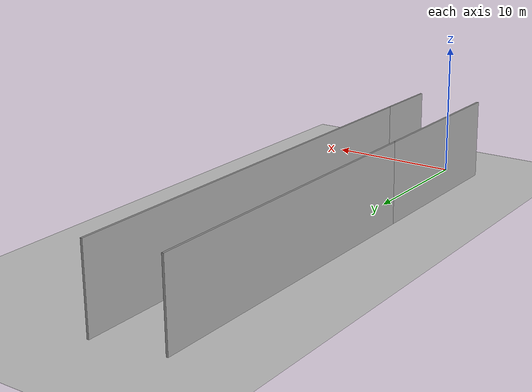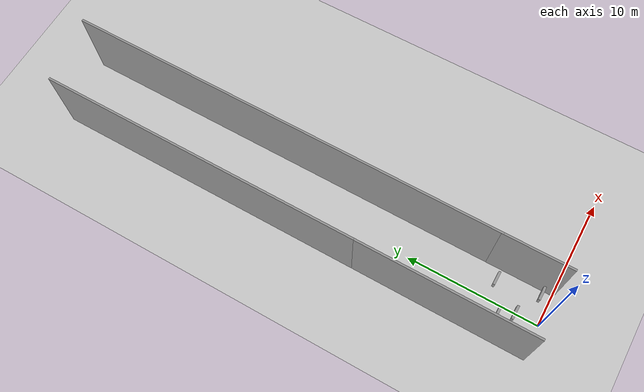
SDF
<sdf version="1.6">
 <world name="default">
  <light name="sun" type="directional">
   <pose>0 0 10 0 -0 0</pose>
   <diffuse>0.8 0.8 0.8 1</diffuse>
   <specular>0.2 0.2 0.2 1</specular>
   <attenuation>
    <range>1000</range>
    <constant>0.9</constant>
    <linear>0.01</linear>
    <quadratic>0.001</quadratic>
   </attenuation>
   <direction>-0.5 0.1 -0.9</direction>
  </light>
  <model name="ground_plane">
   <static>1</static>
   <link name="link">
    <collision name="collision">
     <geometry><plane><normal>0 0 1</normal><size>100 100</size></plane></geometry>
     <surface>
      <contact><collide_bitmask>65535</collide_bitmask></contact>
      <friction><ode><mu>100</mu><mu2>50</mu2></ode></friction>
     </surface>
    </collision>
    <visual name="visual">
     <cast_shadows>0</cast_shadows>
     <geometry><plane><normal>0 0 1</normal><size>100 100</size></plane></geometry>
     <material>
      <script><uri>file://media/materials/scripts/gazebo.material</uri><name>Gazebo/Grey</name></script>
     </material>
    </visual>
   </link>
  </model>
  <gravity>0 0 -9.8</gravity>
  <magnetic_field>6e-06 2.3e-05 -4.2e-05</magnetic_field>
  <atmosphere type="adiabatic"/>
  <physics name="default_physics" default="0" type="ode">
   <max_step_size>0.001</max_step_size>
   <real_time_factor>1</real_time_factor>
   <real_time_update_rate>1000</real_time_update_rate>
  </physics>
  <scene><ambient>0.4 0.4 0.4 1</ambient><background>0.7 0.7 0.7 1</background><shadows>1</shadows></scene>
  <audio><device>default</device></audio>
  <spherical_coordinates>
   <surface_model>EARTH_WGS84</surface_model>
   <latitude_deg>0</latitude_deg>
   <longitude_deg>0</longitude_deg>
   <elevation>0</elevation>
   <heading_deg>0</heading_deg>
  </spherical_coordinates>
  <model name="final">
   <pose>0 18.8855 0 0 -0 0</pose>
   <link name="Wall_3">
    <collision name="Wall_3_Collision">
     <geometry><box><size>5.15 0.15 6</size></box></geometry>
     <pose>0 0 3 0 -0 0</pose>
    </collision>
    <visual name="Wall_3_Visual">
     <pose>0 0 3 0 -0 0</pose>
     <geometry><box><size>5.15 0.15 6</size></box></geometry>
     <material>
      <script><uri>file://media/materials/scripts/gazebo.material</uri><name>Gazebo/Grey</name></script>
      <ambient>1 1 1 1</ambient>
     </material>
     <meta><layer>0</layer></meta>
    </visual>
    <pose>2.5 -16.3855 0 0 -0 1.5708</pose>
   </link>
   <link name="Wall_4">
    <collision name="Wall_4_Collision">
     <geometry><box><size>32.921 0.15 6</size></box></geometry>
     <pose>0 0 3 0 -0 0</pose>
    </collision>
    <visual name="Wall_4_Visual">
     <pose>0 0 3 0 -0 0</pose>
     <geometry><box><size>32.921 0.15 6</size></box></geometry>
     <material>
      <script><uri>file://media/materials/scripts/gazebo.material</uri><name>Gazebo/Grey</name></script>
      <ambient>1 1 1 1</ambient>
     </material>
     <meta><layer>0</layer></meta>
    </visual>
    <pose>2.5 2.5 0 0 -0 1.5708</pose>
   </link>
   <link name="Wall_6">
    <collision name="Wall_6_Collision">
     <geometry><box><size>13.15 0.15 6</size></box></geometry>
     <pose>0 0 3 0 -0 0</pose>
    </collision>
    <visual name="Wall_6_Visual">
     <pose>0 0 3 0 -0 0</pose>
     <geometry><box><size>13.15 0.15 6</size></box></geometry>
     <material>
      <script><uri>file://media/materials/scripts/gazebo.material</uri><name>Gazebo/Grey</name></script>
      <ambient>1 1 1 1</ambient>
     </material>
     <meta><layer>0</layer></meta>
    </visual>
    <pose>-2.5 -12.3855 0 0 -0 1.5708</pose>
   </link>
   <link name="Wall_7">
    <collision name="Wall_7_Collision">
     <geometry><box><size>24.0877 0.15 6</size></box></geometry>
     <pose>0 0 3 0 -0 0</pose>
    </collision>
    <visual name="Wall_7_Visual">
     <pose>0 0 3 0 -0 0</pose>
     <geometry><box><size>24.0877 0.15 6</size></box></geometry>
     <material>
      <script><uri>file://media/materials/scripts/gazebo.material</uri><name>Gazebo/Grey</name></script>
      <ambient>1 1 1 1</ambient>
     </material>
     <meta><layer>0</layer></meta>
    </visual>
    <pose>-2.5 6.083 0 0 -0 1.5708</pose>
   </link>
   <link name="Window_0">
    <collision name="Window_0_Collision">
     <geometry><box><size>1 0.17 0.55</size></box></geometry>
     <pose>0 0 0.275 0 -0 0</pose>
    </collision>
    <visual name="Window_0_Visual">
     <pose>0 0 0.275 0 -0 0</pose>
     <geometry><box><size>1 0.17 0.55</size></box></geometry>
     <material>
      <script><uri>file://media/materials/scripts/gazebo.material</uri><name>Gazebo/Grey</name></script>
     </material>
    </visual>
    <pose>1 -17.8855 3 0 -0 0</pose>
   </link>
   <link name="Window_1">
    <collision name="Window_1_Collision">
     <geometry><box><size>1 0.17 0.55</size></box></geometry>
     <pose>0 0 0.275 0 -0 0</pose>
    </collision>
    <visual name="Window_1_Visual">
     <pose>0 0 0.275 0 -0 0</pose>
     <geometry><box><size>1 0.17 0.55</size></box></geometry>
     <material>
      <script><uri>file://media/materials/scripts/gazebo.material</uri><name>Gazebo/Grey</name></script>
     </material>
    </visual>
    <pose>-1 -16.8855 3 0 -0 0</pose>
   </link>
   <link name="Window_2">
    <collision name="Window_2_Collision">
     <geometry><box><size>1 0.17 0.55</size></box></geometry>
     <pose>0 0 0.275 0 -0 0</pose>
    </collision>
    <visual name="Window_2_Visual">
     <pose>0 0 0.275 0 -0 0</pose>
     <geometry><box><size>1 0.17 0.55</size></box></geometry>
     <material>
      <script><uri>file://media/materials/scripts/gazebo.material</uri><name>Gazebo/Grey</name></script>
     </material>
    </visual>
    <pose>-1.5 -15.9085 3 0 -0 0</pose>
   </link>
   <link name="Window_3">
    <collision name="Window_3_Collision">
     <geometry><box><size>1 0.17 0.55</size></box></geometry>
     <pose>0 0 0.275 0 -0 0</pose>
    </collision>
    <visual name="Window_3_Visual">
     <pose>0 0 0.275 0 -0 0</pose>
     <geometry><box><size>1 0.17 0.55</size></box></geometry>
     <material>
      <script><uri>file://media/materials/scripts/gazebo.material</uri><name>Gazebo/Grey</name></script>
     </material>
    </visual>
    <pose>0.5 -14.8855 3 0 -0 0</pose>
   </link>
   <static>1</static>
  </model>
 </world>
</sdf>
